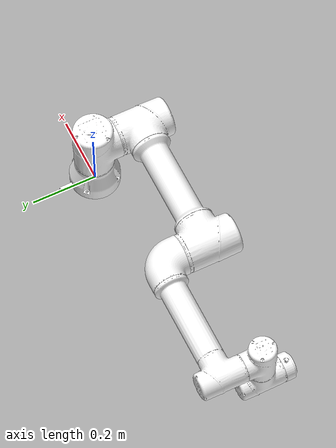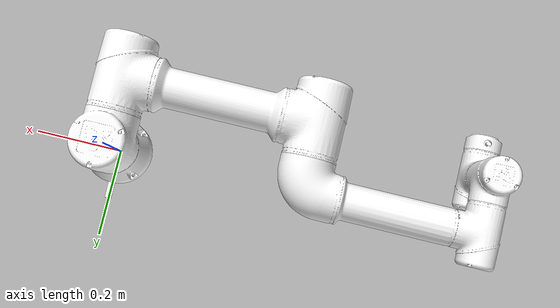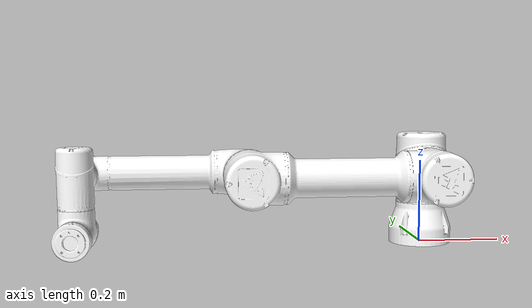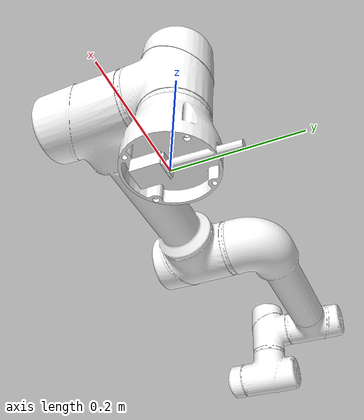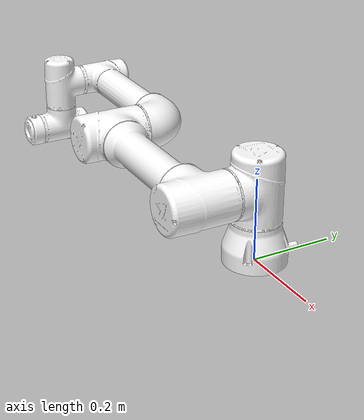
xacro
<?xml version="1.0"?>
<robot xmlns:xacro="http://www.ros.org/wiki/xacro" name="c5a_description">

    <!-- Used for fixing robot to Gazebo 'base_link' 将机械手的基座固定在世界坐标上-->
    <link name="world"/>
    <joint name="fixed" type="fixed">
        <parent link="world"/>
        <child link="base_link"/>
    </joint>

    <!-- Import c5a_description urdf file -->
    <xacro:include filename="$(find gbt_description)/urdf/GBT_C5A_gazebo.urdf" />

    <!-- 对一些link进行gazebo的属性设置 -->
    <gazebo reference="base_link">
        <self_collide>false</self_collide>
        <gravity>false</gravity>
    </gazebo>
    <gazebo reference="link1">
        <material>Gazebo/White</material>
        <self_collide>false</self_collide>
        <gravity>false</gravity>
    </gazebo>
    <gazebo reference="link2">
        <material>Gazebo/Red</material>
        <gravity>false</gravity>
    </gazebo>
    <gazebo reference="link3">
        <material>Gazebo/Green</material>
        <gravity>false</gravity>
    </gazebo>
    <gazebo reference="link4">
        <material>azebo/Orange</material>
        <gravity>false</gravity>
    </gazebo>
    <gazebo reference="link5">
        <material>Gazebo/Gray</material>
        <gravity>false</gravity>
    </gazebo>
    <gazebo reference="link6">
        <material>Gazebo/Yellow</material>
        <gravity>false</gravity>
    </gazebo>

    <gazebo>
        <is_static>true</is_static>
        <self_collide>true</self_collide>
    </gazebo>

    <!-- 声明ros2_control -->
    <ros2_control name="GazeboSystem" type="system">
        <hardware>
            <plugin>gazebo_ros2_control/GazeboSystem</plugin>
        </hardware>
        <joint name="joint1">
            <command_interface name="position"/>
            <state_interface name="position">
                <param name="initial_value">0</param>
            </state_interface>
            <state_interface name="velocity"/>
        </joint>
        <joint name="joint2">
            <command_interface name="position"/>
            <state_interface name="position">
                <param name="initial_value">0</param>
            </state_interface>
            <state_interface name="velocity"/>
        </joint>
        <joint name="joint3">
            <command_interface name="position"/>
            <state_interface name="position">
                <param name="initial_value">0</param>
            </state_interface>
            <state_interface name="velocity"/>
        </joint>
        <joint name="joint4">
            <command_interface name="position"/>
            <state_interface name="position">
                <param name="initial_value">0</param>
            </state_interface>
            <state_interface name="velocity"/>
        </joint>
        <joint name="joint5">
            <command_interface name="position"/>
            <state_interface name="position">
                <param name="initial_value">0</param>
            </state_interface>
            <state_interface name="velocity"/>
        </joint>
        <joint name="joint6">
            <command_interface name="position"/>
            <state_interface name="position">
                <param name="initial_value">0</param>
            </state_interface>
            <state_interface name="velocity"/>
        </joint>
    </ros2_control>

    <!-- 加载ros2_control插件 -->
    <gazebo>
        <plugin filename="libgazebo_ros2_control.so" name="gazebo_ros2_control">
            <parameters>$(find c5a_moveit_config)/config/ros2_controllers.yaml</parameters>
            <robot_param>robot_description</robot_param>
            <robot_param_node>robot_state_publisher</robot_param_node>
        </plugin>
    </gazebo>

</robot>

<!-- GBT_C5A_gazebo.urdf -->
<robot
  name="gbt_description" xmlns:xacro="http://www.ros.org/wiki/xacro">
  <link
    name="base_link">
    <inertial>
      <origin
        xyz="5.3346375504587E-06 -0.00059214591393983 0.0510653572680672"
        rpy="0 0 0" />
      <mass
        value="1.11799442797851" />
      <inertia
        ixx="0.00207412624478233"
        ixy="1.25613398112179E-06"
        ixz="1.65547737935594E-07"
        iyy="0.00194454164076036"
        iyz="-2.30093266885301E-05"
        izz="0.00276348351172803" />
    </inertial>
    <visual>
      <origin
        xyz="0 0 0"
        rpy="0 0 0" />
      <geometry>
        <mesh
          filename="file://$(find gbt_description)/meshes/visual/base_link.STL" />
      </geometry>
      <material
        name="">
        <color
          rgba="1 1 1 1" />
      </material>
    </visual>
    <collision>
      <origin
        xyz="0 0 0"
        rpy="0 0 0" />
      <geometry>
        <mesh
          filename="file://$(find gbt_description)/meshes/collision/base_link.STL" />
      </geometry>
    </collision>
  </link>
  <link
    name="link1">
    <inertial>
      <origin
        xyz="0.00377919075056667 -2.51399014306912E-06 0.0869301328261824"
        rpy="0 0 0" />
      <mass
        value="2.04479035782127" />
      <inertia
        ixx="0.00390129613020746"
        ixy="5.43990541844285E-08"
        ixz="-0.0004980592642129"
        iyy="0.0039677211509232"
        iyz="5.3399796374319E-08"
        izz="0.00382371830243895" />
    </inertial>
    <visual>
      <origin
        xyz="0 0 0"
        rpy="0 0 0" />
      <geometry>
        <mesh
          filename="file://$(find gbt_description)/meshes/visual/link1.STL" />
      </geometry>
      <material
        name="">
        <color
          rgba="1 1 1 1" />
      </material>
    </visual>
    <collision>
      <origin
        xyz="0 0 0"
        rpy="0 0 0" />
      <geometry>
        <mesh
          filename="file://$(find gbt_description)/meshes/collision/link1.STL" />
      </geometry>
    </collision>
  </link>
  <joint
    name="joint1"
    type="revolute">
    <origin
      xyz="0 0 0.094"
      rpy="0 0 -1.570797" />
    <parent
      link="base_link" />
    <child
      link="link1" />
    <axis
      xyz="0 0 1" />
    <limit lower="-6.283185307179" upper="6.283185307179" velocity="3.14159" effort="10.0"/>
  </joint>
  <link
    name="link2">
    <inertial>
      <origin
        xyz="1.50618669053815E-07 0.212605780030747 0.0859526157746499"
        rpy="0 0 0" />
      <mass
        value="6.10875492875952" />
      <inertia
        ixx="0.0267957710935857"
        ixy="-1.34564598586249E-07"
        ixz="6.02548747177494E-08"
        iyy="0.0101014371917945"
        iyz="1.33335511533887E-06"
        izz="0.026506282255423" />
    </inertial>
    <visual>
      <origin
        xyz="0 0 0"
        rpy="0 0 0" />
      <geometry>
        <mesh
          filename="file://$(find gbt_description)/meshes/visual/link2.STL" />
      </geometry>
      <material
        name="">
        <color
          rgba="1 1 1 1" />
      </material>
    </visual>
    <collision>
      <origin
        xyz="0 0 0"
        rpy="0 0 0" />
      <geometry>
        <mesh
          filename="file://$(find gbt_description)/meshes/collision/link2.STL" />
      </geometry>
    </collision>
  </link>
  <joint
    name="joint2"
    type="revolute">
    <origin
      xyz="0.0630000000000007 0 0.0840208674128905"
      rpy="1.57079632679489 -1.5707963267949 1.5707963267949" />
    <parent
      link="link1" />
    <child
      link="link2" />
    <axis
      xyz="0 0 -1" />
    <limit lower="-1.483529864195" upper="4.625122517784" velocity="3.14159" effort="10.0"/>
  </joint>
  <link
    name="link3">
    <inertial>
      <origin
        xyz="5.87080347610989E-07 0.179889890579946 0.0641958228304825"
        rpy="0 0 0" />
      <mass
        value="3.27878276509859" />
      <inertia
        ixx="0.0125366709718065"
        ixy="5.81895610935822E-08"
        ixz="-3.97959054903149E-08"
        iyy="0.00380755431016305"
        iyz="-0.000145643356590976"
        izz="0.0122653626575394" />
    </inertial>
    <visual>
      <origin
        xyz="0 0 0"
        rpy="0 0 0" />
      <geometry>
        <mesh
          filename="file://$(find gbt_description)/meshes/visual/link3.STL" />
      </geometry>
      <material
        name="">
        <color
          rgba="1 1 1 1" />
      </material>
    </visual>
    <collision>
      <origin
        xyz="0 0 0"
        rpy="0 0 0" />
      <geometry>
        <mesh
          filename="file://$(find gbt_description)/meshes/collision/link3.STL" />
      </geometry>
    </collision>
  </link>
  <joint
    name="joint3"
    type="revolute">
    <origin
      xyz="0 0.42497913258711 0.00599999999999846"
      rpy="-3.14159265358979 0 3.14159265358979" />
    <parent
      link="link2" />
    <child
      link="link3" />
    <axis
      xyz="0 0 1" />
    <limit lower="-2.80998009571" upper="2.80998009571" velocity="3.14159" effort="10.0"/>
  </joint>
  <link
    name="link4">
    <inertial>
      <origin
        xyz="2.51890573646324E-06 0.000114371763710763 0.0530633105310244"
        rpy="0 0 0" />
      <mass
        value="0.804364163350571" />
      <inertia
        ixx="0.000935080961535658"
        ixy="3.62404012124143E-08"
        ixz="6.43616167033178E-08"
        iyy="0.000747593929769134"
        iyz="-0.000128082798887313"
        izz="0.000860162773869198" />
    </inertial>
    <visual>
      <origin
        xyz="0 0 0"
        rpy="0 0 0" />
      <geometry>
        <mesh
          filename="file://$(find gbt_description)/meshes/visual/link4.STL" />
      </geometry>
      <material
        name="">
        <color
          rgba="1 1 1 1" />
      </material>
    </visual>
    <collision>
      <origin
        xyz="0 0 0"
        rpy="0 0 0" />
      <geometry>
        <mesh
          filename="file://$(find gbt_description)/meshes/collision/link4.STL" />
      </geometry>
    </collision>
  </link>
  <joint
    name="joint4"
    type="revolute">
    <origin
      xyz="0 0.385 0.00370000000000101"
      rpy="3.14159265358979 0 1.5707963267949" />
    <parent
      link="link3" />
    <child
      link="link4" />
    <axis
      xyz="0 0 -1" />
    <limit lower="-1.483529864195" upper="4.625122517784" velocity="3.14159" effort="10.0"/>
  </joint>
  <link
    name="link5">
    <inertial>
      <origin
        xyz="0.000314682641719494 3.36716779089097E-06 -0.0530496283207993"
        rpy="0 0 0" />
      <mass
        value="0.802210955732477" />
      <inertia
        ixx="0.000745372124504208"
        ixy="3.89144466059342E-08"
        ixz="0.000128783534943426"
        iyy="0.000928034941984505"
        iyz="-3.72342217212453E-08"
        izz="0.000853283143640381" />
    </inertial>
    <visual>
      <origin
        xyz="0 0 0"
        rpy="0 0 0" />
      <geometry>
        <mesh
          filename="file://$(find gbt_description)/meshes/visual/link5.STL" />
      </geometry>
      <material
        name="">
        <color
          rgba="1 1 1 1" />
      </material>
    </visual>
    <collision>
      <origin
        xyz="0 0 0"
        rpy="0 0 0" />
      <geometry>
        <mesh
          filename="file://$(find gbt_description)/meshes/collision/link5.STL" />
      </geometry>
    </collision>
  </link>
  <joint
    name="joint5"
    type="revolute">
    <origin
      xyz="0 0.065299999999999 0.0579999999999997"
      rpy="1.5707963267949 -1.5707963267949 0" />
    <parent
      link="link4" />
    <child
      link="link5" />
    <axis
      xyz="0 0 -1" />
    <limit lower="-6.283185307179" upper="6.283185307179" velocity="3.14159" effort="10.0"/>
  </joint>
  <link
    name="link6">
    <inertial>
      <origin
        xyz="-4.55313953111396E-09 0.000174298782031901 0.0184965902111415"
        rpy="0 0 0" />
      <mass
        value="0.129160189065118" />
      <inertia
        ixx="5.88476928477696E-05"
        ixy="-1.3241461253261E-13"
        ixz="-1.07663359102389E-12"
        iyy="5.9570715686884E-05"
        iyz="-8.25364157349739E-09"
        izz="0.000102277220029045" />
    </inertial>
    <visual>
      <origin
        xyz="0 0 0"
        rpy="0 0 0" />
      <geometry>
        <mesh
          filename="file://$(find gbt_description)/meshes/visual/link6.STL" />
      </geometry>
      <material
        name="">
        <color
          rgba="1 1 1 1" />
      </material>
    </visual>
    <collision>
      <origin
        xyz="0 0 0"
        rpy="0 0 0" />
      <geometry>
        <mesh
          filename="file://$(find gbt_description)/meshes/collision/link6.STL" />
      </geometry>
    </collision>
  </link>
  <joint
    name="joint6"
    type="revolute">
    <origin
      xyz="0.0652999999999996 0 -0.0580000000000009"
      rpy="-1.5707963267949 0 -1.5707963267949" />
    <parent
      link="link5" />
    <child
      link="link6" />
    <axis
      xyz="0 0 1" />
    <limit lower="-6.283185307179" upper="6.283185307179" velocity="3.14159" effort="10.0"/>
  </joint>
</robot>
